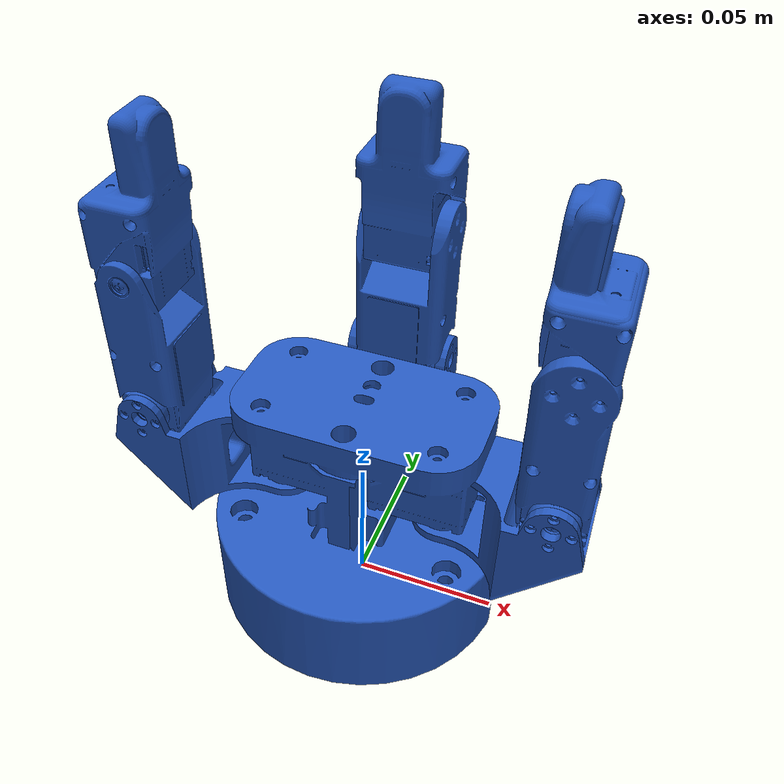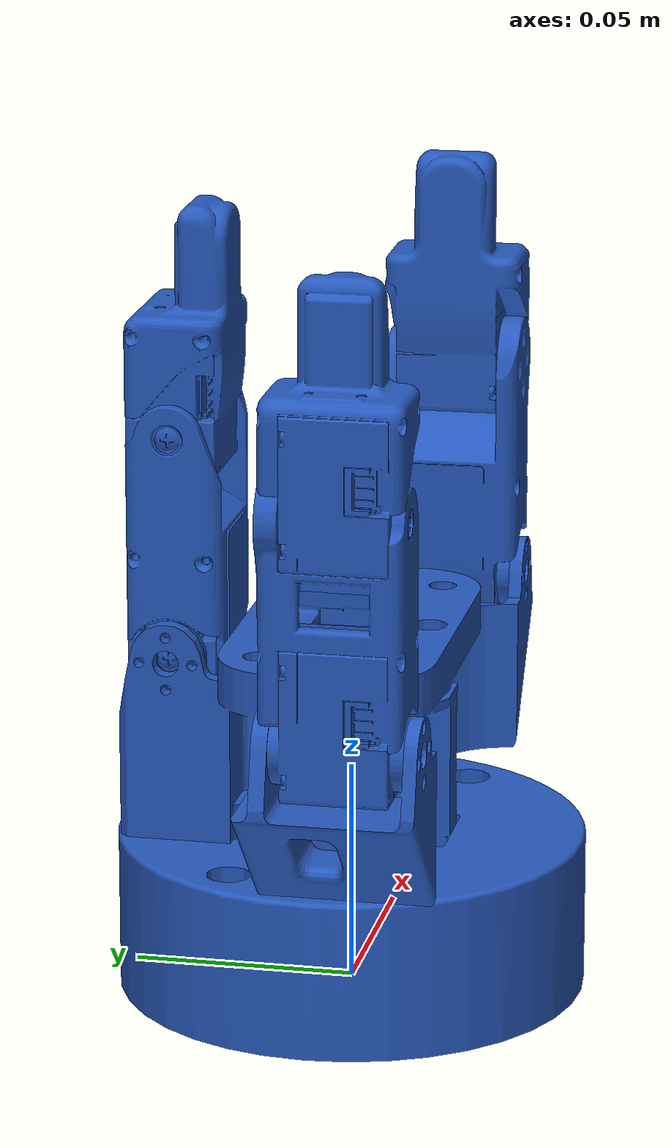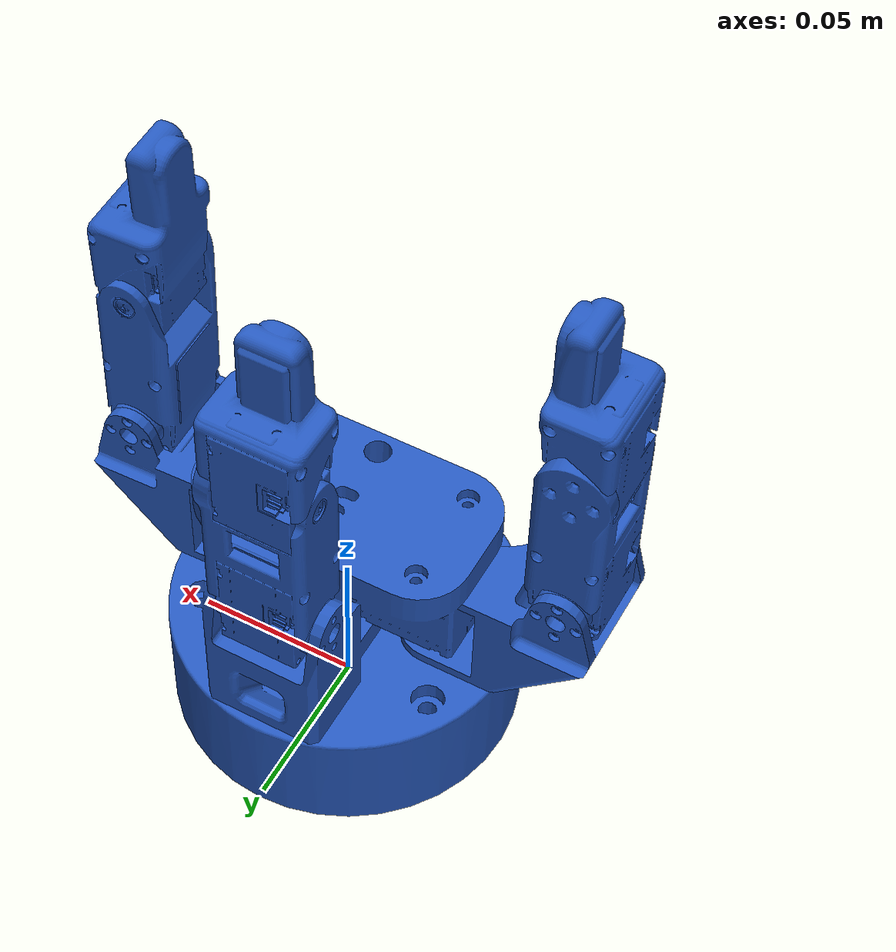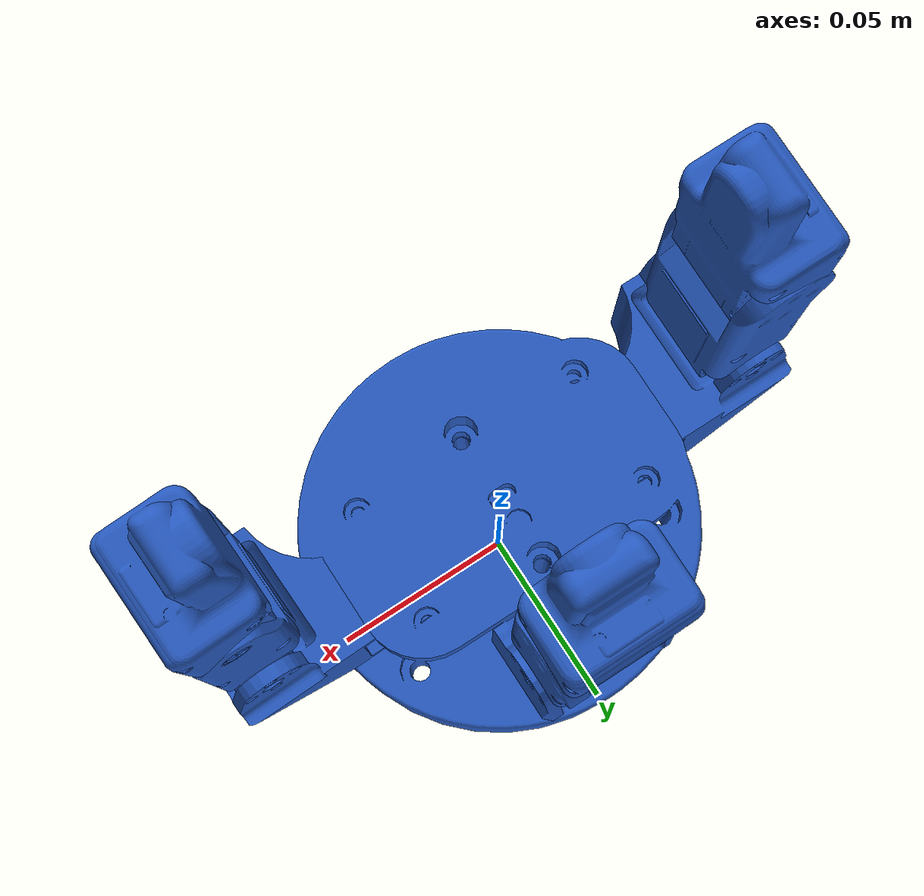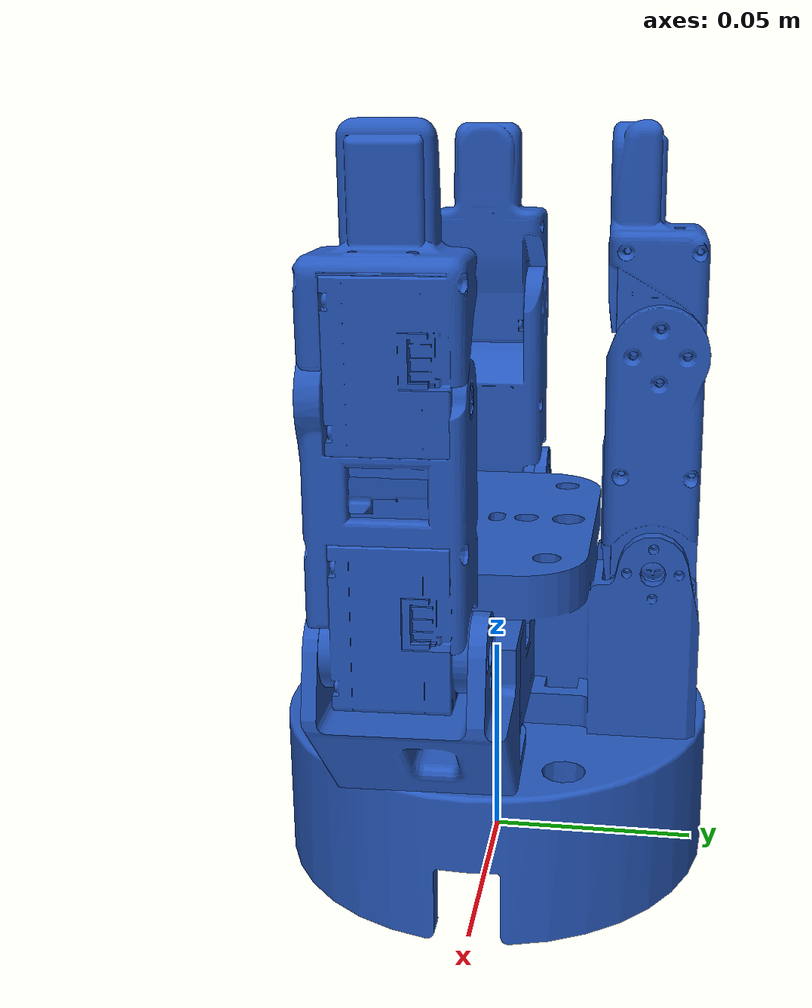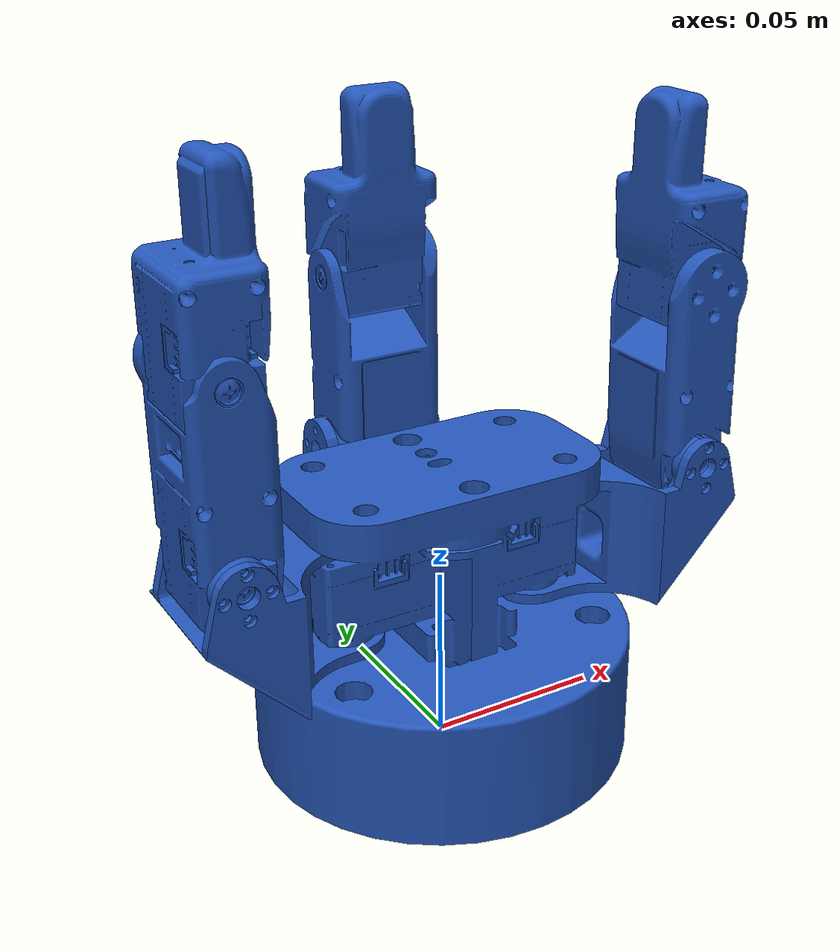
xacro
<?xml version="1.0"?>
<robot xmlns:xacro="http://www.ros.org/wiki/xacro" name="three_finger_gripper">

  <xacro:arg name="prefix" default=""/>

  <xacro:include filename="$(find three_finger_gripper_description)/urdf/three_finger_gripper_macro.xacro"/>
  <xacro:include filename="$(find three_finger_gripper_description)/urdf/palm_sensors.xacro"/>

  <!-- Standalone the gripper hangs off world. Mounted on an arm, include
       three_finger_gripper_macro.xacro from the arm's description instead and
       pass the flange link as parent. -->
  <link name="world"/>

  <xacro:three_finger_gripper prefix="$(arg prefix)" parent="world">
    <origin xyz="0 0 0" rpy="0 0 0"/>
  </xacro:three_finger_gripper>

  <xacro:palm_sensors prefix="$(arg prefix)"/>

</robot>

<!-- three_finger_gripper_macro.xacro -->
<robot xmlns:xacro="http://www.ros.org/wiki/xacro">

  <!-- XC330-M288-T -->
  <xacro:property name="effort" value="0.9"/>
  <xacro:property name="velocity" value="8.0"/>

  <xacro:macro name="three_finger_gripper" params="prefix parent *origin">

    <joint name="${prefix}gripper_mount_joint" type="fixed">
      <parent link="${parent}"/>
      <child link="${prefix}base_link"/>
      <xacro:insert_block name="origin"/>
    </joint>

    <link name="${prefix}B_1_Link_001">
      <visual>
        <origin xyz="0 0 0" rpy="0 0 0"/>
        <geometry><mesh filename="package://three_finger_gripper_description/meshes/B_1_Link_001.stl"/></geometry>
        <material name="gripper_blue"/>
      </visual>
      <collision>
        <origin xyz="0 0 0" rpy="0 0 0"/>
        <geometry><mesh filename="package://three_finger_gripper_description/meshes/B_1_Link_001.stl"/></geometry>
      </collision>
      <inertial>
        <origin xyz="0.0213859975 -0.00687298198 -0.0232483381" rpy="0 0 0"/>
        <mass value="0.0291661825"/>
        <inertia ixx="7.20609e-06" ixy="1.2944e-06" ixz="1.74384e-06" iyy="1.02433e-05" iyz="-3.53657e-07" izz="9.36077e-06"/>
      </inertial>
    </link>

    <link name="${prefix}A_1_Link">
      <visual>
        <origin xyz="0 0 0" rpy="0 0 0"/>
        <geometry><mesh filename="package://three_finger_gripper_description/meshes/A_1_Link.stl"/></geometry>
        <material name="gripper_blue"/>
      </visual>
      <collision>
        <origin xyz="0 0 0" rpy="0 0 0"/>
        <geometry><mesh filename="package://three_finger_gripper_description/meshes/A_1_Link.stl"/></geometry>
      </collision>
      <inertial>
        <origin xyz="-0.0213937351 -0.00691279659 -0.023253972" rpy="0 0 0"/>
        <mass value="0.0292512811"/>
        <inertia ixx="7.24464e-06" ixy="-1.30422e-06" ixz="-1.74839e-06" iyy="1.02708e-05" iyz="-3.56892e-07" izz="9.40087e-06"/>
      </inertial>
    </link>

    <link name="${prefix}A_2_Link">
      <visual>
        <origin xyz="0 0 0" rpy="0 0 0"/>
        <geometry><mesh filename="package://three_finger_gripper_description/meshes/A_2_Link.stl"/></geometry>
        <material name="gripper_blue"/>
      </visual>
      <collision>
        <origin xyz="0 0 0" rpy="0 0 0"/>
        <geometry><mesh filename="package://three_finger_gripper_description/meshes/A_2_Link.stl"/></geometry>
      </collision>
      <inertial>
        <origin xyz="-0.000683579376 0.0242542769 -0.0163262462" rpy="0 0 0"/>
        <mass value="0.0313487056"/>
        <inertia ixx="1.34771e-05" ixy="-1.08084e-07" ixz="-1.61903e-08" iyy="3.5956e-06" iyz="-3.73558e-07" izz="1.23227e-05"/>
      </inertial>
    </link>

    <link name="${prefix}A_3_Link">
      <visual>
        <origin xyz="0 0 0" rpy="0 0 0"/>
        <geometry><mesh filename="package://three_finger_gripper_description/meshes/A_3_Link.stl"/></geometry>
        <material name="gripper_blue"/>
      </visual>
      <collision>
        <origin xyz="0 0 0" rpy="0 0 0"/>
        <geometry><mesh filename="package://three_finger_gripper_description/meshes/A_3_Link.stl"/></geometry>
      </collision>
      <inertial>
        <origin xyz="-0.00116539117 0.0164379777 -0.0107974052" rpy="0 0 0"/>
        <mass value="0.0372085667"/>
        <inertia ixx="1.08795e-05" ixy="4.96523e-07" ixz="-6.47648e-09" iyy="3.74104e-06" iyz="-1.16845e-07" izz="9.67821e-06"/>
      </inertial>
    </link>

    <link name="${prefix}C_2_Link">
      <visual>
        <origin xyz="0 0 0" rpy="0 0 0"/>
        <geometry><mesh filename="package://three_finger_gripper_description/meshes/C_2_Link.stl"/></geometry>
        <material name="gripper_blue"/>
      </visual>
      <collision>
        <origin xyz="0 0 0" rpy="0 0 0"/>
        <geometry><mesh filename="package://three_finger_gripper_description/meshes/C_2_Link.stl"/></geometry>
      </collision>
      <inertial>
        <origin xyz="0.000683997453 0.0242537812 -0.0156732878" rpy="0 0 0"/>
        <mass value="0.0313462089"/>
        <inertia ixx="1.34761e-05" ixy="1.08016e-07" ixz="-1.6059e-08" iyy="3.59513e-06" iyz="3.73433e-07" izz="1.23218e-05"/>
      </inertial>
    </link>

    <link name="${prefix}C_3_Link_001">
      <visual>
        <origin xyz="0 0 0" rpy="0 0 0"/>
        <geometry><mesh filename="package://three_finger_gripper_description/meshes/C_3_Link_001.stl"/></geometry>
        <material name="gripper_blue"/>
      </visual>
      <collision>
        <origin xyz="0 0 0" rpy="0 0 0"/>
        <geometry><mesh filename="package://three_finger_gripper_description/meshes/C_3_Link_001.stl"/></geometry>
      </collision>
      <inertial>
        <origin xyz="0.00140567783 0.0165544048 0.0108497687" rpy="0 0 0"/>
        <mass value="0.0369930615"/>
        <inertia ixx="1.07474e-05" ixy="-7.39332e-07" ixz="5.12229e-10" iyy="3.74092e-06" iyz="9.40608e-08" izz="9.60972e-06"/>
      </inertial>
    </link>

    <link name="${prefix}base_link">
      <visual>
        <origin xyz="0 0 0" rpy="0 0 0"/>
        <geometry><mesh filename="package://three_finger_gripper_description/meshes/base_link.stl"/></geometry>
        <material name="gripper_blue"/>
      </visual>
      <collision>
        <origin xyz="0 0 0" rpy="0 0 0"/>
        <geometry><mesh filename="package://three_finger_gripper_description/meshes/base_link.stl"/></geometry>
      </collision>
      <inertial>
        <origin xyz="-9.6382706e-07 0.00192450292 0.0387988046" rpy="0 0 0"/>
        <mass value="0.277926738"/>
        <inertia ixx="0.000324604" ixy="-1.25055e-09" ixz="-1.26123e-08" iyy="0.000331234" iyz="-1.50554e-05" izz="0.000346961"/>
      </inertial>
    </link>

    <link name="${prefix}B_3_Link">
      <visual>
        <origin xyz="0 0 0" rpy="0 0 0"/>
        <geometry><mesh filename="package://three_finger_gripper_description/meshes/B_3_Link.stl"/></geometry>
        <material name="gripper_blue"/>
      </visual>
      <collision>
        <origin xyz="0 0 0" rpy="0 0 0"/>
        <geometry><mesh filename="package://three_finger_gripper_description/meshes/B_3_Link.stl"/></geometry>
      </collision>
      <inertial>
        <origin xyz="0.00141282959 0.0165297802 -0.0123551695" rpy="0 0 0"/>
        <mass value="0.0370436102"/>
        <inertia ixx="1.07748e-05" ixy="-7.35705e-07" ixz="1.07836e-09" iyy="3.74748e-06" iyz="8.62589e-08" izz="9.63615e-06"/>
      </inertial>
    </link>

    <link name="${prefix}B_2_Link">
      <visual>
        <origin xyz="0 0 0" rpy="0 0 0"/>
        <geometry><mesh filename="package://three_finger_gripper_description/meshes/B_2_Link.stl"/></geometry>
        <material name="gripper_blue"/>
      </visual>
      <collision>
        <origin xyz="0 0 0" rpy="0 0 0"/>
        <geometry><mesh filename="package://three_finger_gripper_description/meshes/B_2_Link.stl"/></geometry>
      </collision>
      <inertial>
        <origin xyz="0.000683628708 0.0242541479 -0.0185737881" rpy="0 0 0"/>
        <mass value="0.0313498415"/>
        <inertia ixx="1.34775e-05" ixy="1.08103e-07" ixz="-1.61905e-08" iyy="3.59573e-06" iyz="3.73609e-07" izz="1.23231e-05"/>
      </inertial>
    </link>

    <!-- motor 1 -->
    <joint name="${prefix}C_2_Joint" type="revolute">
      <parent link="${prefix}base_link"/>
      <child link="${prefix}C_2_Link"/>
      <origin xyz="-0.0145001631 0.0383998353 0.0770002598" rpy="1.57079977 -1.34284085e-07 -1.57079976"/>
      <axis xyz="0 0 1"/>
      <limit lower="-0.221657" upper="1.26013" effort="${effort}" velocity="${velocity}"/>
    </joint>

    <!-- motor 2 -->
    <joint name="${prefix}C_3_Joint" type="revolute">
      <parent link="${prefix}C_2_Link"/>
      <child link="${prefix}C_3_Link_001"/>
      <origin xyz="6.31723492e-07 0.0499998496 -0.0261002724" rpy="1.67177151e-07 -8.07151405e-07 -5.53390475e-07"/>
      <axis xyz="0 0 1"/>
      <limit lower="-2.0944" upper="0.644027" effort="${effort}" velocity="${velocity}"/>
    </joint>

    <!-- motor 3 -->
    <joint name="${prefix}A_2_Joint" type="revolute">
      <parent link="${prefix}A_1_Link"/>
      <child link="${prefix}A_2_Link"/>
      <origin xyz="-0.0384004039 -0.0290008044 -0.0390000457" rpy="-1.57079951 0.015708371 -3.14158578"/>
      <axis xyz="0 0 -1"/>
      <limit lower="-0.499164" upper="1.23744" effort="${effort}" velocity="${velocity}"/>
    </joint>

    <!-- motor 4 -->
    <joint name="${prefix}A_3_Joint" type="revolute">
      <parent link="${prefix}A_2_Link"/>
      <child link="${prefix}A_3_Link"/>
      <origin xyz="1.36339317e-07 0.0499997474 -0.00589972461" rpy="1.58885345e-09 -1.42958947e-07 2.4249211e-07"/>
      <axis xyz="0 0 -1"/>
      <limit lower="-2.0944" upper="0.644027" effort="${effort}" velocity="${velocity}"/>
    </joint>

    <!-- motor 5 -->
    <joint name="${prefix}B_2_Joint" type="revolute">
      <parent link="${prefix}B_1_Link_001"/>
      <child link="${prefix}B_2_Link"/>
      <origin xyz="0.0384001953 -0.0289001111 -0.0389995578" rpy="-1.5707996 7.41566182e-08 -3.14158515"/>
      <axis xyz="0 0 1"/>
      <limit lower="-0.499164" upper="1.23744" effort="${effort}" velocity="${velocity}"/>
    </joint>

    <!-- motor 6 -->
    <joint name="${prefix}B_3_Joint" type="revolute">
      <parent link="${prefix}B_2_Link"/>
      <child link="${prefix}B_3_Link"/>
      <origin xyz="-1.93065522e-08 0.0499995561 -0.0057995579" rpy="8.37638333e-09 3.20096406e-07 -3.51844561e-07"/>
      <axis xyz="0 0 1"/>
      <limit lower="-2.0944" upper="0.644027" effort="${effort}" velocity="${velocity}"/>
    </joint>

    <!-- motor 7 -->
    <joint name="${prefix}A_1_Joint" type="revolute">
      <parent link="${prefix}base_link"/>
      <child link="${prefix}A_1_Link"/>
      <origin xyz="0.0295000587 1.39331777e-07 0.0380002526" rpy="-3.14158543 -1.60278625e-07 -3.11366017"/>
      <axis xyz="0 0 1"/>
      <limit lower="-1.5708" upper="1.5708" effort="${effort}" velocity="${velocity}"/>
    </joint>

    <!-- motor 8 -->
    <joint name="${prefix}B_1_Joint" type="revolute">
      <parent link="${prefix}base_link"/>
      <child link="${prefix}B_1_Link_001"/>
      <origin xyz="-0.0294996344 -6.91998508e-07 0.0380001102" rpy="-3.14158563 -3.55114485e-07 -3.14158514"/>
      <axis xyz="0 0 1"/>
      <limit lower="-1.5708" upper="1.5708" effort="${effort}" velocity="${velocity}"/>
    </joint>

  </xacro:macro>

  <material name="gripper_blue">
    <color rgba="0.15 0.35 0.75 1.0"/>
  </material>

</robot>

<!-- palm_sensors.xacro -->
<robot xmlns:xacro="http://www.ros.org/wiki/xacro">

  <!-- Measured on the physical board. The palm mesh shows this sensor board mirrored
       in Y; only that visual is affected. -->
  <xacro:macro name="palm_sensors" params="prefix
                                           board_z:=0.081
                                           camera_offset:=-0.0072">

    <!-- TOF sits at the board centre; mirroring does not move it. -->
    <link name="${prefix}palm_tof"/>
    <joint name="${prefix}palm_tof_joint" type="fixed">
      <parent link="${prefix}base_link"/>
      <child link="${prefix}palm_tof"/>
      <origin xyz="0 0 ${board_z}" rpy="0 0 0"/>
    </joint>

    <!-- Negative Y is away from the thumb. Both frames look along +Z, out of the palm. -->
    <link name="${prefix}palm_camera"/>
    <joint name="${prefix}palm_camera_joint" type="fixed">
      <parent link="${prefix}base_link"/>
      <child link="${prefix}palm_camera"/>
      <origin xyz="0 ${camera_offset} ${board_z}" rpy="0 0 0"/>
    </joint>

  </xacro:macro>

</robot>
